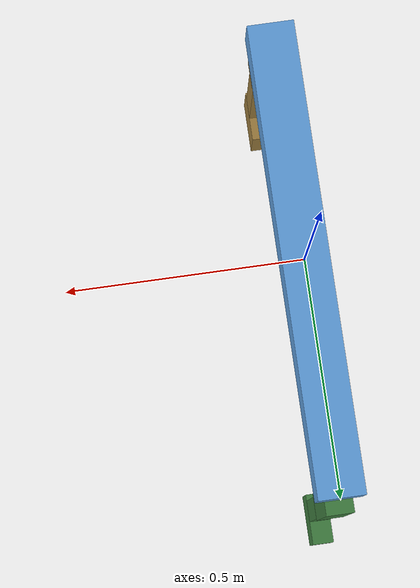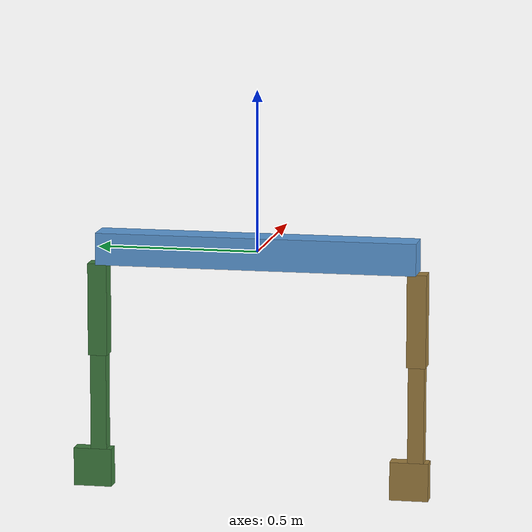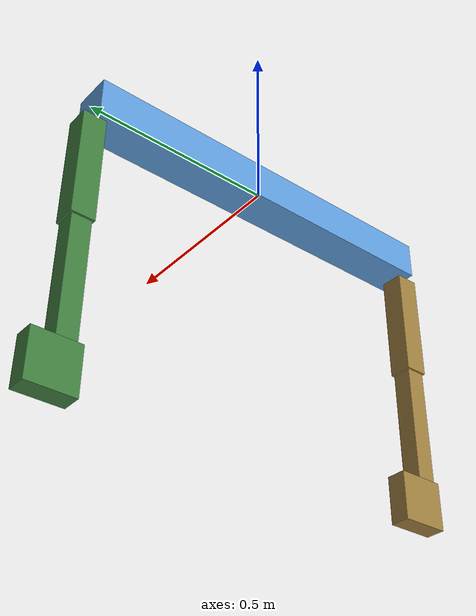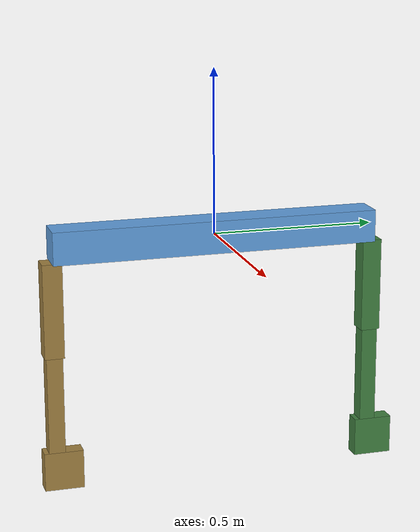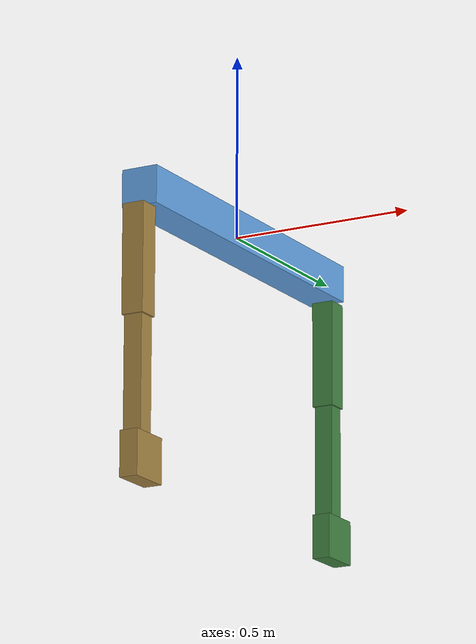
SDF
<?xml version="1.0"?>
<sdf version="1.8">
  <model name="half_cheetah_bare">
    <link name="anchor">
      <inertial><mass>0.5</mass>
        <inertia><ixx>0.001</ixx><iyy>0.001</iyy><izz>0.001</izz></inertia></inertial>
    </link>
    <joint name="root_fwd" type="prismatic">
      <pose relative_to="anchor">0 0 0 0 0 0</pose>
      <parent>anchor</parent><child>d1</child>
      <axis><xyz>0 1 0</xyz><dynamics><damping>0.5</damping></dynamics></axis>
    </joint>
    <link name="d1"><pose relative_to="root_fwd">0 0 0 0 0 0</pose>
      <inertial><mass>1.0</mass>
        <inertia><ixx>1e-4</ixx><iyy>1e-4</iyy><izz>1e-4</izz></inertia></inertial>
    </link>
    <joint name="root_up" type="prismatic">
      <pose relative_to="d1">0 0 0 0 0 0</pose>
      <parent>d1</parent><child>d2</child>
      <axis><xyz>0 0 1</xyz><dynamics><damping>0.5</damping></dynamics></axis>
    </joint>
    <link name="d2"><pose relative_to="root_up">0 0 0 0 0 0</pose>
      <inertial><mass>1.0</mass>
        <inertia><ixx>1e-4</ixx><iyy>1e-4</iyy><izz>1e-4</izz></inertia></inertial>
    </link>
    <joint name="root_pitch" type="revolute">
      <pose relative_to="d2">0 0 0 0 0 0</pose>
      <parent>d2</parent><child>torso</child>
      <axis><xyz>1 0 0</xyz><dynamics><damping>1.0</damping></dynamics></axis>
    </joint>
    <link name="torso">
      <pose relative_to="root_pitch">0 0 0 0 0 0</pose>
      <inertial><mass>6.25</mass>
        <inertia><ixx>1.6</ixx><iyy>0.06</iyy><izz>1.6</izz></inertia></inertial>
      <collision name="torso_collision">
        <geometry><box><size>0.1 1.0 0.1</size></box></geometry></collision>
      <visual name="torso_visual">
        <geometry><box><size>0.1 1.0 0.1</size></box></geometry>
        <material><ambient>0.375 0.625 0.875 1</ambient><diffuse>0.375 0.625 0.875 1</diffuse></material></visual>
    </link>
    <joint name="bthigh" type="revolute">
      <pose relative_to="torso">0 -0.5 -0.05 0 0 0</pose>
      <parent>torso</parent><child>bthigh_l</child>
      <axis><xyz>1 0 0</xyz><limit><lower>-0.52</lower><upper>1.05</upper></limit><dynamics><damping>6.0</damping></dynamics></axis>
    </joint>
    <link name="bthigh_l">
      <pose relative_to="bthigh">0 0 0 0 0 0</pose>
      <inertial><pose>0 0 -0.145 0 0 0</pose><mass>1.5</mass>
        <inertia><ixx>0.31</ixx><iyy>0.31</iyy><izz>0.002</izz></inertia></inertial>
      <collision name="bthigh_collision"><pose>0 0 -0.145 0 0 0</pose>
        <geometry><box><size>0.06 0.06 0.29</size></box></geometry></collision>
      <visual name="bthigh_visual"><pose>0 0 -0.145 0 0 0</pose>
        <geometry><box><size>0.06 0.06 0.29</size></box></geometry>
        <material><ambient>0.625 0.5 0.25 1</ambient><diffuse>0.625 0.5 0.25 1</diffuse></material></visual>
    </link>
    <joint name="bshin" type="revolute">
      <pose relative_to="bthigh_l">0 0 -0.29 0 0 0</pose>
      <parent>bthigh_l</parent><child>bshin_l</child>
      <axis><xyz>1 0 0</xyz><limit><lower>-0.785</lower><upper>0.785</upper></limit><dynamics><damping>4.5</damping></dynamics></axis>
    </joint>
    <link name="bshin_l">
      <pose relative_to="bshin">0 0 0 0 0 0</pose>
      <inertial><pose>0 0 -0.15 0 0 0</pose><mass>1.6</mass>
        <inertia><ixx>0.31</ixx><iyy>0.31</iyy><izz>0.002</izz></inertia></inertial>
      <collision name="bshin_collision"><pose>0 0 -0.15 0 0 0</pose>
        <geometry><box><size>0.05 0.05 0.3</size></box></geometry></collision>
      <visual name="bshin_visual"><pose>0 0 -0.15 0 0 0</pose>
        <geometry><box><size>0.05 0.05 0.3</size></box></geometry>
        <material><ambient>0.625 0.5 0.25 1</ambient><diffuse>0.625 0.5 0.25 1</diffuse></material></visual>
    </link>
    <joint name="bfoot" type="revolute">
      <pose relative_to="bshin_l">0 0 -0.3 0 0 0</pose>
      <parent>bshin_l</parent><child>bfoot_l</child>
      <axis><xyz>1 0 0</xyz><limit><lower>-0.4</lower><upper>0.785</upper></limit><dynamics><damping>3.0</damping></dynamics></axis>
    </joint>
    <link name="bfoot_l">
      <pose relative_to="bfoot">0 0 0 0 0 0</pose>
      <inertial><pose>0 0.02 -0.06 0 0 0</pose><mass>1.0</mass>
        <inertia><ixx>0.3</ixx><iyy>0.3</iyy><izz>0.002</izz></inertia></inertial>
      <collision name="bfoot_collision"><pose>0 0.02 -0.06 0 0 0</pose>
        <geometry><box><size>0.05 0.12 0.12</size></box></geometry></collision>
      <visual name="bfoot_visual"><pose>0 0.02 -0.06 0 0 0</pose>
        <geometry><box><size>0.05 0.12 0.12</size></box></geometry>
        <material><ambient>0.625 0.5 0.25 1</ambient><diffuse>0.625 0.5 0.25 1</diffuse></material></visual>
    </link>
    <joint name="fthigh" type="revolute">
      <pose relative_to="torso">0 0.5 -0.05 0 0 0</pose>
      <parent>torso</parent><child>fthigh_l</child>
      <axis><xyz>1 0 0</xyz><limit><lower>-1.0</lower><upper>0.7</upper></limit><dynamics><damping>4.5</damping></dynamics></axis>
    </joint>
    <link name="fthigh_l">
      <pose relative_to="fthigh">0 0 0 0 0 0</pose>
      <inertial><pose>0 0 -0.145 0 0 0</pose><mass>1.5</mass>
        <inertia><ixx>0.31</ixx><iyy>0.31</iyy><izz>0.002</izz></inertia></inertial>
      <collision name="fthigh_collision"><pose>0 0 -0.145 0 0 0</pose>
        <geometry><box><size>0.06 0.06 0.29</size></box></geometry></collision>
      <visual name="fthigh_visual"><pose>0 0 -0.145 0 0 0</pose>
        <geometry><box><size>0.06 0.06 0.29</size></box></geometry>
        <material><ambient>0.25 0.5 0.25 1</ambient><diffuse>0.25 0.5 0.25 1</diffuse></material></visual>
    </link>
    <joint name="fshin" type="revolute">
      <pose relative_to="fthigh_l">0 0 -0.29 0 0 0</pose>
      <parent>fthigh_l</parent><child>fshin_l</child>
      <axis><xyz>1 0 0</xyz><limit><lower>-1.2</lower><upper>0.87</upper></limit><dynamics><damping>3.0</damping></dynamics></axis>
    </joint>
    <link name="fshin_l">
      <pose relative_to="fshin">0 0 0 0 0 0</pose>
      <inertial><pose>0 0 -0.15 0 0 0</pose><mass>1.6</mass>
        <inertia><ixx>0.31</ixx><iyy>0.31</iyy><izz>0.002</izz></inertia></inertial>
      <collision name="fshin_collision"><pose>0 0 -0.15 0 0 0</pose>
        <geometry><box><size>0.05 0.05 0.3</size></box></geometry></collision>
      <visual name="fshin_visual"><pose>0 0 -0.15 0 0 0</pose>
        <geometry><box><size>0.05 0.05 0.3</size></box></geometry>
        <material><ambient>0.25 0.5 0.25 1</ambient><diffuse>0.25 0.5 0.25 1</diffuse></material></visual>
    </link>
    <joint name="ffoot" type="revolute">
      <pose relative_to="fshin_l">0 0 -0.3 0 0 0</pose>
      <parent>fshin_l</parent><child>ffoot_l</child>
      <axis><xyz>1 0 0</xyz><limit><lower>-0.5</lower><upper>0.5</upper></limit><dynamics><damping>1.5</damping></dynamics></axis>
    </joint>
    <link name="ffoot_l">
      <pose relative_to="ffoot">0 0 0 0 0 0</pose>
      <inertial><pose>0 0.02 -0.06 0 0 0</pose><mass>1.0</mass>
        <inertia><ixx>0.3</ixx><iyy>0.3</iyy><izz>0.002</izz></inertia></inertial>
      <collision name="ffoot_collision"><pose>0 0.02 -0.06 0 0 0</pose>
        <geometry><box><size>0.05 0.12 0.12</size></box></geometry></collision>
      <visual name="ffoot_visual"><pose>0 0.02 -0.06 0 0 0</pose>
        <geometry><box><size>0.05 0.12 0.12</size></box></geometry>
        <material><ambient>0.25 0.5 0.25 1</ambient><diffuse>0.25 0.5 0.25 1</diffuse></material></visual>
    </link>
  </model>
</sdf>
